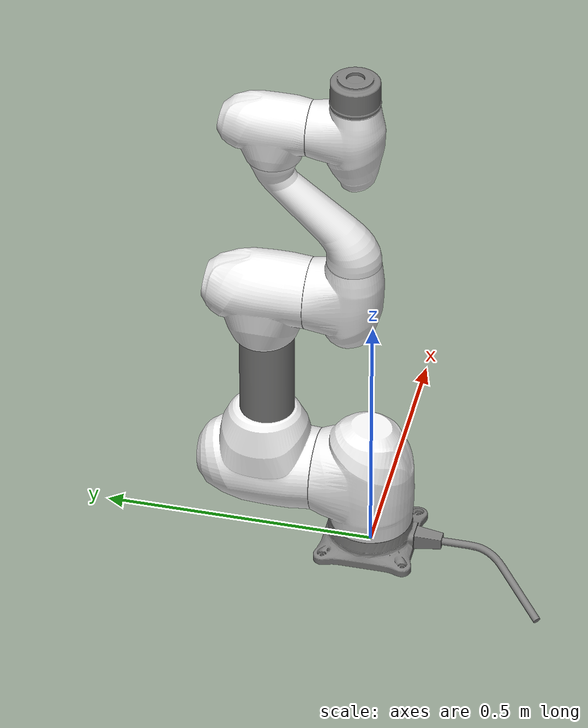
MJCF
<mujoco model="m1509">
    <actuator>
        <!-- Physical limits of the actuator. -->
        <!-- Values taken from https://www.universal-robots.com/articles/ur-articles/max-joint-torques/ -->
        <motor ctrllimited="true" ctrlrange="-360.0 360.0" joint="doosan_joint1" name="torq_j1"/>
        <motor ctrllimited="true" ctrlrange="-180.0 180.0" joint="doosan_joint2" name="torq_j2"/>
        <motor ctrllimited="true" ctrlrange="-135.0 135.0" joint="doosan_joint3" name="torq_j3"/>
        <motor ctrllimited="true" ctrlrange="-360.0 360.0" joint="doosan_joint4" name="torq_j4"/>
        <motor ctrllimited="true" ctrlrange="-135.0 135.0" joint="doosan_joint5" name="torq_j5"/>
        <motor ctrllimited="true" ctrlrange="-360.0 360.0" joint="doosan_joint6" name="torq_j6"/>
    </actuator>
    <asset>
        <mesh name="MF1509_0_0 vis" file="meshes/MF1509_0_0.stl" scale="0.001 0.001 0.001"/>
        <mesh name="MF1509_1_0 vis" file="meshes/MF1509_1_0.stl" scale="0.001 0.001 0.001"/>
        <mesh name="MF1509_2_0 vis" file="meshes/MF1509_2_0.stl" scale="0.001 0.001 0.001"/>
        <mesh name="MF1509_2_1 vis" file="meshes/MF1509_2_1.stl" scale="0.001 0.001 0.001"/>
        <mesh name="MF1509_2_2 vis" file="meshes/MF1509_2_2.stl" scale="0.001 0.001 0.001"/>
        <mesh name="MF1509_3_0 vis" file="meshes/MF1509_3_0.stl" scale="0.001 0.001 0.001"/>
        <mesh name="MF1509_4_0 vis" file="meshes/MF1509_4_0.stl" scale="0.001 0.001 0.001"/>
        <mesh name="MF1509_4_1 vis" file="meshes/MF1509_4_1.stl" scale="0.001 0.001 0.001"/>
        <mesh name="MF1509_5_0 vis" file="meshes/MF1509_5_0.stl" scale="0.001 0.001 0.001"/>
        <mesh name="MF1509_6_0 vis" file="meshes/MF1509_6_0.stl" scale="0.001 0.001 0.001"/>
    </asset>
    <worldbody>
        <body name="doosan_base" quat="1 0 0 0">
            <!-- robot view -->
            <camera mode="fixed" name="robotview" pos="1.0 0 0.4" quat="0.653 0.271 0.271 0.653"/>
            <inertial mass="3.722" pos="0 0 0.050723" fullinertia="0.011 0.011 0.014 -7.19e-06 -1.94e-06 4.9e-06"/>
            <!-- mount attached here -->
            <geom rgba="0.49 0.49 0.486 1" mesh="MF1509_0_0 vis" type="mesh" contype="0" conaffinity="0"
                  group="1"/>
            <body name="link1" pos="0 0 0.1525">
                <inertial pos="0.00012 0.0428 -0.00638" quat="0.453204 0.542776 -0.542776 0.453204" mass="7.8" diaginertia="0.39544 0.39 0.22456" />
                <joint name="doosan_joint1" limited="true" range="-6.28 6.28" damping="0.001"
                       frictionloss="0.01"/>
                <geom rgba="0.941 0.941 0.941 1" mesh="MF1509_1_0 vis" type="mesh" contype="0" conaffinity="0"
                      group="1"/>
                <body name="link2" pos="0 0.0345 0" quat="0.499898 -0.500102 -0.5 -0.5">
                    <inertial pos="0.17062 -9e-05 0.15731" quat="0.499973 0.499904 0.499533 0.500589" mass="10.06" diaginertia="0.3209 0.31069 0.0352096" />
                    <joint name="doosan_joint2" limited="true" range="-6.28 6.28" damping="0.001"
                           frictionloss="0.01"/>
                    <geom rgba="0.941 0.941 0.941 1" mesh="MF1509_2_0 vis" type="mesh" contype="0" conaffinity="0"
                          group="1"/>
                    <geom rgba="0.49 0.49 0.486 1" mesh="MF1509_2_1 vis" type="mesh" contype="0" conaffinity="0"
                          group="1"/>
                    <geom rgba="0.941 0.941 0.941 1" mesh="MF1509_2_2 vis" type="mesh" contype="0" conaffinity="0"
                          group="1"/>
                    <body name="link3" pos="0.411 0 0" quat="0.707035 0 0 0.707179">
                        <inertial pos="-3e-05 -0.00672 0.04454" quat="0.668331 0.743864 0 0" mass="3.68" diaginertia="0.0117709 0.0107306 0.0076324" />
                        <joint name="doosan_joint3" limited="true" range="-6.28 6.28" damping="0.001"
                               frictionloss="0.01"/>
                        <geom rgba="0.941 0.941 0.941 1" mesh="MF1509_3_0 vis" type="mesh" contype="0" conaffinity="0"
                              group="1"/>
                        <body name="link4" pos="0 -0.368 0" quat="0.707035 0.707179 0 0">
                            <inertial pos="-3e-05 0.09715 -0.1096" quat="0.963602 -0.26734 0 0" mass="3.59" diaginertia="0.05187 0.0498421 0.00624791" />
                            <joint name="doosan_joint4" limited="true" range="-6.28 6.28" damping="0.001"
                                   frictionloss="0.01"/>
                            <geom rgba="0.941 0.941 0.941 1" mesh="MF1509_4_0 vis" type="mesh" contype="0"
                                  conaffinity="0" group="1"/>
                            <geom rgba="0.941 0.941 0.941 1" mesh="MF1509_4_1 vis" type="mesh" contype="0"
                                  conaffinity="0" group="1"/>
                            <body name="link5" pos="0 0 0" quat="0.707035 -0.707179 0 0">
                                <inertial pos="-0.00015 0.00382 0.03185" quat="0.757676 0.652631 0 0" mass="2.83" diaginertia="0.00804063 0.00685413 0.00494145" />
                                <joint name="doosan_joint5" limited="true" range="-6.28 6.28" damping="0.001"
                                       frictionloss="0.01"/>
                                <geom rgba="0.941 0.941 0.941 1" mesh="MF1509_5_0 vis" type="mesh" contype="0"
                                      conaffinity="0" group="1"/>
                                <body name="link6" pos="0 -0.121 0" quat="0.707035 0.707179 0 0">
                                    <inertial pos="-0.00012 -0.00017 -0.0539" mass="1.16" diaginertia="0.003 0.003 0.00110716" />
                                    <joint name="doosan_joint6" limited="true" range="-6.28319 6.28319" damping="0.001"
                                           frictionloss="0.01"/>
                                    <geom rgba="0.49 0.49 0.486 1" mesh="MF1509_6_0 vis" type="mesh" contype="0"
                                          conaffinity="0" group="1"/>
                                    <body name="right_hand" pos="0 0 0" quat="0.707 0 0 0.707">
                                        <!-- This camera points out from the eef. -->
                                        <camera mode="fixed" name="eye_in_hand" pos="0.05 0 0" fovy="75"/>
                                        <!-- To add gripper -->
                                    </body>
                                </body>
                            </body>
                        </body>
                    </body>
                </body>
            </body>
        </body>

    </worldbody>
</mujoco>
